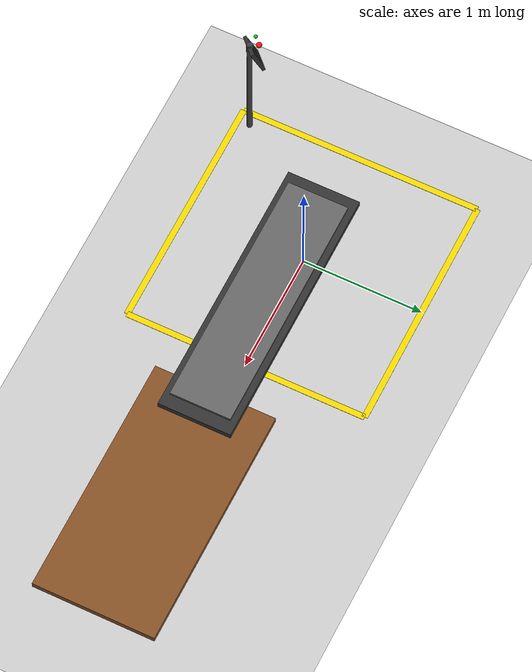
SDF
<?xml version="1.0"?>
<!--
  warehouse.world  — FIXED
  =========================
  FIX WARN#1: model://conveyor changed to model://conveyor_belt (matches folder name)
  Added: teach pendant + E-stop stand, safety floor tape
-->
<sdf version="1.6">
  <world name="warehouse">
    <include>
      <uri>model://sun</uri>
    </include>
    <include>
      <uri>model://ground_plane</uri>
    </include>

    <!-- Conveyor Belt — FIX: was model://conveyor (wrong), now model://conveyor_belt -->
    <include>
      <uri>model://conveyor_belt</uri>
      <pose>0.75 0 0.12 0 0 0</pose>
    </include>

    <!-- Work table / bucket area -->
    <model name="table">
      <static>true</static>
      <link name="table_link">
        <pose>0 0 0.4 0 0 0</pose>
        <collision name="c">
          <geometry><box><size>2.0 1.0 0.05</size></box></geometry>
        </collision>
        <visual name="v">
          <geometry><box><size>2.0 1.0 0.05</size></box></geometry>
          <material>
            <ambient>0.45 0.28 0.12 1</ambient>
            <diffuse>0.52 0.32 0.15 1</diffuse>
          </material>
        </visual>
      </link>
      <pose>2.5 0 0.0 0 0 0</pose>
    </model>

    <!-- Teach pendant + E-stop stand (placed outside robot safety cell) -->
    <model name="teach_pendant_stand">
      <static>true</static>
      <pose>-0.9 -0.9 0 0 0 0.7854</pose>
      <link name="link">
        <!-- Pole -->
        <visual name="pole">
          <pose>0 0 0.6 0 0 0</pose>
          <geometry><cylinder><radius>0.022</radius><length>1.2</length></cylinder></geometry>
          <material><ambient>0.25 0.25 0.25 1</ambient></material>
        </visual>
        <!-- Pendant body -->
        <visual name="pendant">
          <pose>0 0.04 1.05 0.35 0 0</pose>
          <geometry><box><size>0.18 0.025 0.28</size></box></geometry>
          <material><ambient>0.12 0.12 0.14 1</ambient><diffuse>0.18 0.18 0.20 1</diffuse></material>
        </visual>
        <!-- E-stop button (red mushroom cap) -->
        <visual name="estop_cap">
          <pose>0.04 0.065 1.22 0.35 0 0</pose>
          <geometry><cylinder><radius>0.022</radius><length>0.014</length></cylinder></geometry>
          <material><ambient>0.88 0.04 0.04 1</ambient><diffuse>0.95 0.05 0.05 1</diffuse></material>
        </visual>
        <!-- Enable / deadman button (green) -->
        <visual name="enable_btn">
          <pose>-0.04 0.065 1.22 0.35 0 0</pose>
          <geometry><cylinder><radius>0.014</radius><length>0.010</length></cylinder></geometry>
          <material><ambient>0.05 0.75 0.05 1</ambient></material>
        </visual>
        <!-- Screen -->
        <visual name="screen">
          <pose>0 0.055 0.98 0.35 0 0</pose>
          <geometry><box><size>0.13 0.010 0.10</size></box></geometry>
          <material><ambient>0.04 0.08 0.18 1</ambient><diffuse>0.06 0.12 0.28 1</diffuse></material>
        </visual>
        <collision name="c">
          <pose>0 0 0.6 0 0 0</pose>
          <geometry><cylinder><radius>0.025</radius><length>1.2</length></cylinder></geometry>
        </collision>
      </link>
    </model>

    <!-- Safety tape on floor around robot cell (1.0 m radius) -->
    <model name="floor_tape_n"><static>true</static><pose>0  1.0 0.002 0 0 0</pose>
      <link name="l"><visual name="v"><geometry><box><size>2.0 0.05 0.002</size></box></geometry>
        <material><ambient>0.95 0.85 0.0 1</ambient></material></visual></link></model>
    <model name="floor_tape_s"><static>true</static><pose>0 -1.0 0.002 0 0 0</pose>
      <link name="l"><visual name="v"><geometry><box><size>2.0 0.05 0.002</size></box></geometry>
        <material><ambient>0.95 0.85 0.0 1</ambient></material></visual></link></model>
    <model name="floor_tape_w"><static>true</static><pose>-1.0 0 0.002 0 0 0</pose>
      <link name="l"><visual name="v"><geometry><box><size>0.05 2.0 0.002</size></box></geometry>
        <material><ambient>0.95 0.85 0.0 1</ambient></material></visual></link></model>
    <model name="floor_tape_e"><static>true</static><pose>1.0 0 0.002 0 0 0</pose>
      <link name="l"><visual name="v"><geometry><box><size>0.05 2.0 0.002</size></box></geometry>
        <material><ambient>0.95 0.85 0.0 1</ambient></material></visual></link></model>

  </world>
</sdf>

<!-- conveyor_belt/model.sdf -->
<sdf version="1.6">
  <model name="conveyor_belt">

    <!--
      Keep the belt static=false so Gazebo simulates friction correctly.
      The chassis underneath is held in place by a fixed joint to the world.
    -->
    <static>false</static>

    <!-- ── Chassis (invisible, provides the fixed base) ──────────────────── -->
    <link name="chassis">
      <pose>0 0 0.45 0 0 0</pose>
      <inertial>
        <mass>50.0</mass>
        <inertia>
          <ixx>5.0</ixx><iyy>5.0</iyy><izz>5.0</izz>
          <ixy>0</ixy><ixz>0</ixz><iyz>0</iyz>
        </inertia>
      </inertial>
      <visual name="chassis_visual">
        <geometry>
          <box><size>2.2 0.6 0.05</size></box>
        </geometry>
        <material>
          <ambient>0.15 0.15 0.15 1</ambient>
          <diffuse>0.2  0.2  0.2  1</diffuse>
        </material>
      </visual>
      <collision name="chassis_collision">
        <geometry>
          <box><size>2.2 0.6 0.05</size></box>
        </geometry>
      </collision>
    </link>

    <!-- ── Belt surface ────────────────────────────────────────────────────── -->
    <link name="belt_link">
      <pose>0 0 0.5 0 0 0</pose>
      <inertial>
        <mass>5.0</mass>
        <inertia>
          <ixx>0.5</ixx><iyy>0.5</iyy><izz>0.5</izz>
          <ixy>0</ixy><ixz>0</ixz><iyz>0</iyz>
        </inertia>
      </inertial>

      <visual name="belt_visual">
        <geometry>
          <box><size>2.0 0.5 0.02</size></box>
        </geometry>
        <material>
          <ambient>0.3 0.3 0.3 1</ambient>
          <diffuse>0.4 0.4 0.4 1</diffuse>
        </material>
      </visual>

      <collision name="belt_collision">
        <geometry>
          <box><size>2.0 0.5 0.02</size></box>
        </geometry>
        <surface>
          <friction>
            <ode>
              <!-- High friction so products move reliably with the belt -->
              <mu>0.9</mu>
              <mu2>0.9</mu2>
              <!-- fdir1 sets the primary friction direction — along belt (X) -->
              <fdir1>1 0 0</fdir1>
            </ode>
          </friction>
          <contact>
            <ode>
              <kp>1000000.0</kp>
              <kd>100.0</kd>
            </ode>
          </contact>
        </surface>
      </collision>
    </link>

    <!-- ── Fix chassis to world ───────────────────────────────────────────── -->
    <joint name="chassis_to_world" type="fixed">
      <parent>world</parent>
      <child>chassis</child>
    </joint>

    <!-- ── Belt slides along X relative to chassis ───────────────────────── -->
    <joint name="belt_joint" type="prismatic">
      <parent>chassis</parent>
      <child>belt_link</child>
      <axis>
        <xyz>1 0 0</xyz>
        <limit>
          <!-- No hard position limits — the plugin manages velocity -->
          <lower>-1e16</lower>
          <upper>1e16</upper>
          <effort>100</effort>
          <velocity>2.0</velocity>
        </limit>
        <dynamics>
          <damping>10.0</damping>
          <friction>0.0</friction>
        </dynamics>
        <use_parent_model_frame>true</use_parent_model_frame>
      </axis>
    </joint>

    <!-- ── ROS2 conveyor plugins ──────────────────────────────────────────── -->

    <!-- Broadcasts belt_joint position/velocity as sensor_msgs/JointState. -->
    <plugin name="conveyor_joint_states" filename="libgazebo_ros_joint_state_publisher.so">
      <ros>
        <namespace>/conveyor</namespace>
        <remapping>joint_states:=joint_states</remapping>
      </ros>
      <update_rate>30</update_rate>
      <joint_name>belt_joint</joint_name>
    </plugin>

    <plugin name="conveyor_belt_control" filename="libconveyor_belt_plugin.so">
      <joint_name>belt_joint</joint_name>
      <initial_velocity>0.12</initial_velocity>
    </plugin>

  </model>
</sdf>
